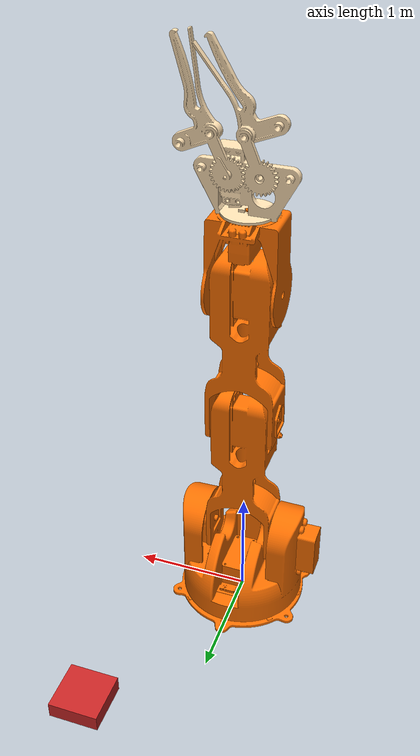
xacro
<?xml version="1.0" ?>
<robot name="tinkerkit" xmlns:xacro="http://www.ros.org/wiki/xacro">

    <xacro:arg name="is_sim" default="true"/>
    <!-- Start GZ or Ignition depending on ROS 2 Version -->
    <xacro:arg name="is_ignition" default="true"/>

    <!-- Include Gazebo Parameters -->
    <xacro:include filename="$(find tinkerkit_description)/urdf/tinkerkit_gazebo.xacro" />
    <xacro:include filename="$(find tinkerkit_description)/urdf/gazebe_material.xacro" />
    <!-- Include ros2_control Plugins -->
    <xacro:include filename="$(find tinkerkit_description)/urdf/tinkerkit_ros2_control.xacro" />
    <!--Include Sensor-->
    <xacro:include filename="$(find tinkerkit_description)/urdf/camera.xacro" />

    <!-- Useful XACRO Variables (Properties) -->
    <xacro:property name="PI" value="3.14159265359" />
    <xacro:property name="effort" value="30.0" />
    <xacro:property name="velocity" value="10.0" />
    <!-- Useful Macros -->
    <xacro:macro name="deafult_inertial" params="mass">
        <inertial>
             <mass value="${mass}"/>
             <inertia    ixx="1.0"   ixy="0.0"   ixz="0.0"
                    iyy="1.0"   iyz="0.0"
                    izz="1.0"/>
         </inertial>
    </xacro:macro>

    <xacro:macro name="default_transmission" params="number">
        <transmission name="transmission_${number}">
            <plugin>transmission_interface/SimpleTransmission</plugin>
            <actuator name="motor_${number}" role="actuator1">
                <hardwareInterface>hardware_interaface/EffortJointInterface</hardwareInterface>
            </actuator>
            <joint name="joint_${number}"    role="joint1">
                 <hardwareInterface>hardware_interaface/EffortJointInterface</hardwareInterface>
                 <mechanical_reduction>1.0</mechanical_reduction>
            </joint>
        </transmission>
    </xacro:macro>

<link name="world"/>

<link name="base_link">
    <xacro:deafult_inertial mass="0.25"/>
    <visual>
        <origin xyz="0 0 0" rpy="0 0 0"/>
        <geometry>
              <mesh filename="file://$(find tinkerkit_description)/meshes/base_link.stl" scale="0.01 0.01 0.01"/>
        </geometry>
        <material name="orange"/>
    </visual>
    <collision>
        <origin xyz="0 0 0" rpy="0 0 0"/>
        <geometry>
            <mesh filename="file://$(find tinkerkit_description)/meshes/base_link.stl" scale="0.01 0.01 0.01"/>
        </geometry>
    </collision>
</link>
<link name="shoulder_link">
    <xacro:deafult_inertial mass="0.2"/>
    <visual>
        <origin xyz="-0.0 0.0 -0.18" rpy="0 0 0"/>
        <geometry>
            <mesh filename="file://$(find tinkerkit_description)/meshes/shoulder_link.stl" scale="0.01 0.01 0.01"/>
        </geometry>
        <material name="orange"/>
     </visual>
     <collision>
        <origin xyz="-0.0 0.0 -0.18" rpy="0 0 0"/>
        <geometry>
            <mesh filename="file://$(find tinkerkit_description)/meshes/shoulder_link.stl" scale="0.01 0.01 0.01"/>
        </geometry>
     </collision>
</link>
<link name="elbow_link">
    <xacro:deafult_inertial mass="0.15"/>
    <visual>
        <origin xyz="0.0 0.0 -0.6705" rpy="0 0 0"/>
        <geometry>
            <mesh filename="file://$(find tinkerkit_description)/meshes/elbow_link.stl" scale="0.01 0.01 0.01"/>
        </geometry>
        <material name="orange"/>
    </visual>
    <collision>
        <origin xyz="0.0 0.0 -0.6705" rpy="0 0 0"/>
        <geometry>
            <mesh filename="file://$(find tinkerkit_description)/meshes/elbow_link.stl" scale="0.01 0.01 0.01"/>
        </geometry>
    </collision>
</link>

<link name="arm_link">
    <xacro:deafult_inertial mass="0.15"/>
    <visual>
        <origin xyz="0.0 0.0 -1.92" rpy="0 0 0"/>
        <geometry>
            <mesh filename="file://$(find tinkerkit_description)/meshes/arm_link.stl" scale="0.01 0.01 0.01"/>
        </geometry>
        <material name="orange"/>
    </visual>
    <collision>
        <origin xyz="0.0 0.0 -1.92" rpy="0 0 0"/>
        <geometry>
            <mesh filename="file://$(find tinkerkit_description)/meshes/arm_link.stl" scale="0.01 0.01 0.01"/>
        </geometry>
    </collision>
</link>

<link name="wrist_link">
    <xacro:deafult_inertial mass="0.1"/>
    <visual>
        <origin xyz="0.0 0.00 -3.25" rpy="0 0 0"/>
        <geometry>
            <mesh filename="file://$(find tinkerkit_description)/meshes/wrist_link.stl" scale="0.01 0.01 0.01"/>
        </geometry>
        <material name="orange"/>
    </visual>
    <collision>
        <origin xyz="0.0 0.00 -3.25" rpy="0 0 0"/>
        <geometry>
            <mesh filename="file://$(find tinkerkit_description)/meshes/wrist_link.stl" scale="0.01 0.01 0.01"/>
        </geometry>
    </collision>
</link>

<link name="hand_link">
    <xacro:deafult_inertial mass="0.1"/>
    <visual>
        <origin xyz="0.0 0.0 -3.75" rpy="0 0 0"/>
        <geometry>
            <mesh filename="file://$(find tinkerkit_description)/meshes/hand_link.stl" scale="0.01 0.01 0.01"/>
        </geometry>
        <material name="amber"/>
    </visual>
    <collision>
        <origin xyz="0.0 0.0 -3.75" rpy="0 0 0"/>
        <geometry>
            <mesh filename="file://$(find tinkerkit_description)/meshes/hand_link.stl" scale="0.01 0.01 0.01"/>
        </geometry>
    </collision>
</link>
<link name="left_gripper">
    <xacro:deafult_inertial mass="0.05"/>
    <visual>
        <origin xyz="-0.125 -0.087 -4.1125" rpy="0 0 0"/>
        <geometry>
            <mesh filename="file://$(find tinkerkit_description)/meshes/left_gripper.stl" scale="0.01 0.01 0.01"/>
        </geometry>
        <material name="amber"/>
    </visual>
    <collision>
        <origin xyz="-0.125 -0.087 -4.1125" rpy="0 0 0"/>
        <geometry>
            <mesh filename="file://$(find tinkerkit_description)/meshes/left_gripper.stl" scale="0.01 0.01 0.01"/>
        </geometry>
    </collision>
</link>
<link name="right_gripper">
    <xacro:deafult_inertial mass="0.05"/>
    <visual>
        <origin xyz="0.125 -0.087 -4.1125" rpy="0 0 0"/>
        <geometry>
            <mesh filename="file://$(find tinkerkit_description)/meshes/right_gripper.stl" scale="0.01 0.01 0.01"/>
        </geometry>
        <material name="amber"/>
    </visual>
    <collision>
        <origin xyz="0.125 -0.087 -4.1125" rpy="0 0 0"/>
        <geometry>
            <mesh filename="file://$(find tinkerkit_description)/meshes/right_gripper.stl" scale="0.01 0.01 0.01"/>
        </geometry>
    </collision>
</link>

<joint name="virtual_joint" type="fixed">
    <parent link="world"/>
    <child link="base_link"/>
    <origin xyz="0 0 0.05" rpy="0 0 0"/>
</joint>

<joint name="joint_1" type="revolute"> <!--base_joint-->
    <origin xyz="0.0 0.0 0.18" rpy="0 0 0"/>
    <parent link="base_link"/>
    <child link="shoulder_link"/>
    <axis xyz="0.0 -0.0 1.0"/>
    <limit upper="${PI}" lower="${0}" effort="${effort}" velocity="${velocity}"/>
</joint>
<joint name="joint_2" type="revolute"> <!--shoulder_joint-->
    <origin xyz="0 0 0.50" rpy="0 0 0"/>
    <parent link="shoulder_link"/>
    <child link="elbow_link"/>
    <axis xyz="1.0 0.0 0.0"/>
    <limit upper="${PI/2.57143}" lower="-${PI/2.57143}" effort="${effort}" velocity="${velocity}"/>
  </joint>

<joint name="joint_3" type="revolute"> <!--elbow_joint-->
    <origin xyz="0.0 0.0 1.245" rpy="0 0 0"/>
    <parent link="elbow_link"/>
    <child link="arm_link"/>
    <axis xyz="1.0 0.0 -0.0"/>
    <limit upper="${PI/1.8}" lower="-${PI/1.8}" effort="${effort}" velocity="${velocity}"/>
</joint>

<joint name="joint_4" type="revolute"> <!--arm_joint-->
    <origin xyz="0.0 0.0 1.245" rpy="0 0 0"/>
    <parent link="arm_link"/>
    <child link="wrist_link"/>
    <axis xyz="1.0 0.0 -0.0"/>
    <limit upper="${PI/2}" lower="-${PI/2}" effort="${effort}" velocity="${velocity}"/>
</joint>

<joint name="joint_5" type="revolute"> <!--hand_joint-->
    <origin xyz="0.0 0.0 0.50" rpy="0 0 0"/>
    <parent link="wrist_link"/>
    <child link="hand_link"/>
    <axis xyz="-0.0 0.0 1.0"/>
    <limit upper="${PI/2}" lower="-${PI/2}" effort="${effort}" velocity="${velocity}"/>
</joint>
<joint name="joint_6" type="revolute"> <!--left_gripper_joint-->
    <origin xyz="0.12 0.1 0.36" rpy="0 0 0"/>
    <parent link="hand_link"/>
    <child link="left_gripper"/>
    <axis xyz="0.0 -1.0 0.0"/>
    <limit upper="-${PI/180}" lower="-${PI/4}" effort="${effort}" velocity="${velocity}"/>
</joint>
<joint name="joint_7" type="revolute"> <!--right_gripper_joint-->
    <origin xyz="-0.12 0.1 0.36" rpy="0 0 0"/>
    <parent link="hand_link"/>
    <child link="right_gripper"/>
    <axis xyz="0.0 1.0 0.0"/>
    <mimic joint="joint_6" multiplier="1"/>
    <limit upper="${PI/4}" lower="${PI/180}" effort="${effort}" velocity="${velocity}"/>
</joint>

<material name="orange">
    <color rgba="1.00 0.44 0.0 1" />
</material>

<material name="amber">
    <color rgba="1.00 0.88 0.7 1" />
</material>

<!-- Transmissions-->
<xacro:default_transmission number="1"/>
<xacro:default_transmission number="2"/>
<xacro:default_transmission number="3"/>
<xacro:default_transmission number="4"/>
<xacro:default_transmission number="5"/>
<xacro:default_transmission number="6"/>
<xacro:default_transmission number="7"/>
<xacro:default_transmission number="8"/>

</robot>

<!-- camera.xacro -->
<robot xmlns:xacro="http://www.ros.org/wiki/xacro" >

    <link name="camera_link">
        <visual>
            <geometry>
                <box size="0.1 0.3 0.3"/>
            </geometry>
            <material name="red"/>
        </visual>
    </link>

    <joint name="camera_optical_joint" type="fixed">
        <origin xyz="0 0 0" rpy="${-pi/2} 0 ${-pi/2}" />
        <parent link="camera_link" />
        <child link="camera_link_optical" />
    </joint>

    <link name="camera_link_optical"></link>

    <joint name="joint_8" type="fixed">
        <parent link="base_link"/>
        <child link="camera_link"/>
        <origin xyz="0 3 2" rpy="0 1.57 0"/>
    </joint>

    <gazebo reference="camera_link">
        <sensor name="camera" type="camera">
            <pose> 0 0 0 0 0 0 </pose>
            <visualize>true</visualize>
            <update_rate>10</update_rate>
            <camera>
                <camera>
                    <horizontal_fov>1.089</horizontal_fov>
                    <image>
                        <format>R8G8B8</format>
                        <width>480</width>
                        <height>640</height>
                    </image>
                    <clip>
                        <near>0.05</near>
                        <far>8.0</far>
                    </clip>
                </camera>
            </camera>
            <plugin name="camera_controller" filename="libgazebo_ros_camera.so">
                <plugin name="camera_controller" filename="libgazebo_ros_camera.so">
                    <frame_name>camera_link_optical</frame_name>
                </plugin>
            </plugin>
        </sensor>
      </gazebo>

</robot>
